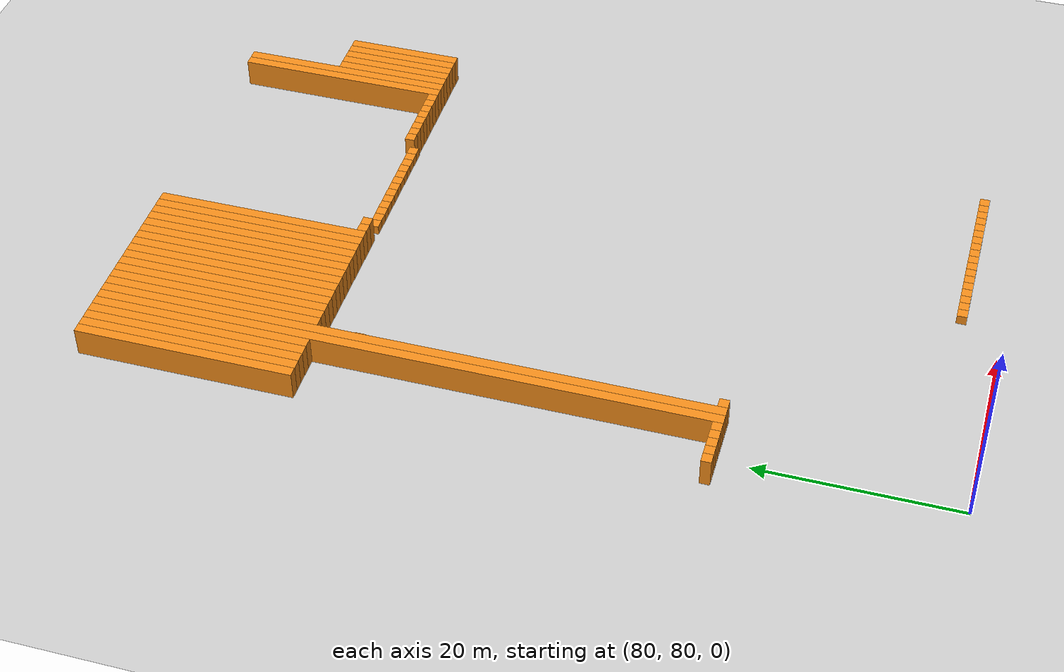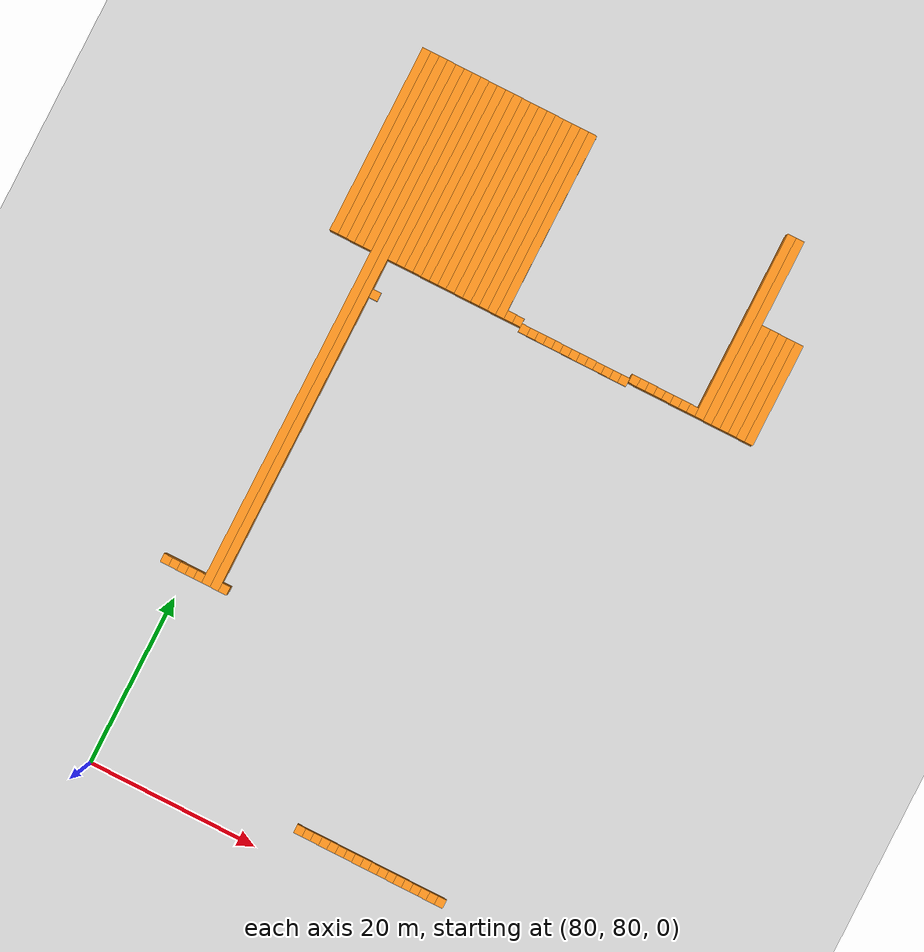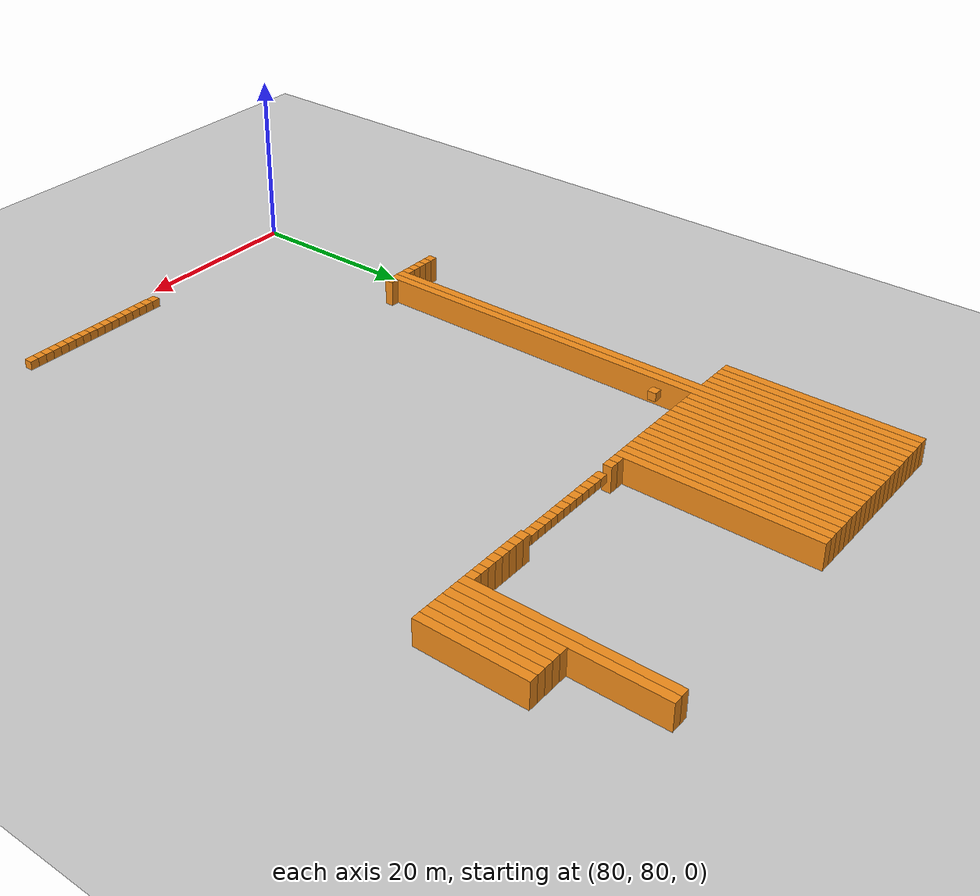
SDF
<sdf version="1.6">
 <world name="default">
  <include><uri>model://ground_plane</uri></include>
  <model name="unit_box_861">
   <pose>77.50   103.50     1.50 0 0 0</pose>
   <static>1</static>
   <link name="link">
    <inertial>
     <mass>5000</mass>
     <inertia><ixx>200</ixx><ixy>0</ixy><ixz>0</ixz><iyy>200</iyy><iyz>0</iyz><izz>200</izz></inertia>
    </inertial>
    <collision name="collision"><geometry><box><size>1 1 3</size></box></geometry></collision>
    <visual name="visual">
     <geometry><box><size>1 1 3</size></box></geometry>
     <material>
      <script><name>Gazebo/Orange</name><uri>file://media/materials/scripts/gazebo.material</uri></script>
     </material>
    </visual>
   </link>
  </model>
  <model name="unit_box_862">
   <pose>77.50   154.00     1.50 0 0 0</pose>
   <static>1</static>
   <link name="link">
    <inertial>
     <mass>5000</mass>
     <inertia><ixx>200</ixx><ixy>0</ixy><ixz>0</ixz><iyy>200</iyy><iyz>0</iyz><izz>200</izz></inertia>
    </inertial>
    <collision name="collision"><geometry><box><size>1 22 3</size></box></geometry></collision>
    <visual name="visual">
     <geometry><box><size>1 22 3</size></box></geometry>
     <material>
      <script><name>Gazebo/Orange</name><uri>file://media/materials/scripts/gazebo.material</uri></script>
     </material>
    </visual>
   </link>
  </model>
  <model name="unit_box_874">
   <pose>78.50   103.50     1.50 0 0 0</pose>
   <static>1</static>
   <link name="link">
    <inertial>
     <mass>5000</mass>
     <inertia><ixx>200</ixx><ixy>0</ixy><ixz>0</ixz><iyy>200</iyy><iyz>0</iyz><izz>200</izz></inertia>
    </inertial>
    <collision name="collision"><geometry><box><size>1 1 3</size></box></geometry></collision>
    <visual name="visual">
     <geometry><box><size>1 1 3</size></box></geometry>
     <material>
      <script><name>Gazebo/Orange</name><uri>file://media/materials/scripts/gazebo.material</uri></script>
     </material>
    </visual>
   </link>
  </model>
  <model name="unit_box_875">
   <pose>78.50   154.00     1.50 0 0 0</pose>
   <static>1</static>
   <link name="link">
    <inertial>
     <mass>5000</mass>
     <inertia><ixx>200</ixx><ixy>0</ixy><ixz>0</ixz><iyy>200</iyy><iyz>0</iyz><izz>200</izz></inertia>
    </inertial>
    <collision name="collision"><geometry><box><size>1 22 3</size></box></geometry></collision>
    <visual name="visual">
     <geometry><box><size>1 22 3</size></box></geometry>
     <material>
      <script><name>Gazebo/Orange</name><uri>file://media/materials/scripts/gazebo.material</uri></script>
     </material>
    </visual>
   </link>
  </model>
  <model name="unit_box_887">
   <pose>79.50   103.50     1.50 0 0 0</pose>
   <static>1</static>
   <link name="link">
    <inertial>
     <mass>5000</mass>
     <inertia><ixx>200</ixx><ixy>0</ixy><ixz>0</ixz><iyy>200</iyy><iyz>0</iyz><izz>200</izz></inertia>
    </inertial>
    <collision name="collision"><geometry><box><size>1 1 3</size></box></geometry></collision>
    <visual name="visual">
     <geometry><box><size>1 1 3</size></box></geometry>
     <material>
      <script><name>Gazebo/Orange</name><uri>file://media/materials/scripts/gazebo.material</uri></script>
     </material>
    </visual>
   </link>
  </model>
  <model name="unit_box_888">
   <pose>79.50   154.00     1.50 0 0 0</pose>
   <static>1</static>
   <link name="link">
    <inertial>
     <mass>5000</mass>
     <inertia><ixx>200</ixx><ixy>0</ixy><ixz>0</ixz><iyy>200</iyy><iyz>0</iyz><izz>200</izz></inertia>
    </inertial>
    <collision name="collision"><geometry><box><size>1 22 3</size></box></geometry></collision>
    <visual name="visual">
     <geometry><box><size>1 22 3</size></box></geometry>
     <material>
      <script><name>Gazebo/Orange</name><uri>file://media/materials/scripts/gazebo.material</uri></script>
     </material>
    </visual>
   </link>
  </model>
  <model name="unit_box_900">
   <pose>80.50   103.50     1.50 0 0 0</pose>
   <static>1</static>
   <link name="link">
    <inertial>
     <mass>5000</mass>
     <inertia><ixx>200</ixx><ixy>0</ixy><ixz>0</ixz><iyy>200</iyy><iyz>0</iyz><izz>200</izz></inertia>
    </inertial>
    <collision name="collision"><geometry><box><size>1 1 3</size></box></geometry></collision>
    <visual name="visual">
     <geometry><box><size>1 1 3</size></box></geometry>
     <material>
      <script><name>Gazebo/Orange</name><uri>file://media/materials/scripts/gazebo.material</uri></script>
     </material>
    </visual>
   </link>
  </model>
  <model name="unit_box_901">
   <pose>80.50   154.00     1.50 0 0 0</pose>
   <static>1</static>
   <link name="link">
    <inertial>
     <mass>5000</mass>
     <inertia><ixx>200</ixx><ixy>0</ixy><ixz>0</ixz><iyy>200</iyy><iyz>0</iyz><izz>200</izz></inertia>
    </inertial>
    <collision name="collision"><geometry><box><size>1 22 3</size></box></geometry></collision>
    <visual name="visual">
     <geometry><box><size>1 22 3</size></box></geometry>
     <material>
      <script><name>Gazebo/Orange</name><uri>file://media/materials/scripts/gazebo.material</uri></script>
     </material>
    </visual>
   </link>
  </model>
  <model name="unit_box_913">
   <pose>81.50   103.50     1.50 0 0 0</pose>
   <static>1</static>
   <link name="link">
    <inertial>
     <mass>5000</mass>
     <inertia><ixx>200</ixx><ixy>0</ixy><ixz>0</ixz><iyy>200</iyy><iyz>0</iyz><izz>200</izz></inertia>
    </inertial>
    <collision name="collision"><geometry><box><size>1 1 3</size></box></geometry></collision>
    <visual name="visual">
     <geometry><box><size>1 1 3</size></box></geometry>
     <material>
      <script><name>Gazebo/Orange</name><uri>file://media/materials/scripts/gazebo.material</uri></script>
     </material>
    </visual>
   </link>
  </model>
  <model name="unit_box_914">
   <pose>81.50   154.00     1.50 0 0 0</pose>
   <static>1</static>
   <link name="link">
    <inertial>
     <mass>5000</mass>
     <inertia><ixx>200</ixx><ixy>0</ixy><ixz>0</ixz><iyy>200</iyy><iyz>0</iyz><izz>200</izz></inertia>
    </inertial>
    <collision name="collision"><geometry><box><size>1 22 3</size></box></geometry></collision>
    <visual name="visual">
     <geometry><box><size>1 22 3</size></box></geometry>
     <material>
      <script><name>Gazebo/Orange</name><uri>file://media/materials/scripts/gazebo.material</uri></script>
     </material>
    </visual>
   </link>
  </model>
  <model name="unit_box_927">
   <pose>82.50   134.00     1.50 0 0 0</pose>
   <static>1</static>
   <link name="link">
    <inertial>
     <mass>5000</mass>
     <inertia><ixx>200</ixx><ixy>0</ixy><ixz>0</ixz><iyy>200</iyy><iyz>0</iyz><izz>200</izz></inertia>
    </inertial>
    <collision name="collision"><geometry><box><size>1 62 3</size></box></geometry></collision>
    <visual name="visual">
     <geometry><box><size>1 62 3</size></box></geometry>
     <material>
      <script><name>Gazebo/Orange</name><uri>file://media/materials/scripts/gazebo.material</uri></script>
     </material>
    </visual>
   </link>
  </model>
  <model name="unit_box_941">
   <pose>83.50   134.00     1.50 0 0 0</pose>
   <static>1</static>
   <link name="link">
    <inertial>
     <mass>5000</mass>
     <inertia><ixx>200</ixx><ixy>0</ixy><ixz>0</ixz><iyy>200</iyy><iyz>0</iyz><izz>200</izz></inertia>
    </inertial>
    <collision name="collision"><geometry><box><size>1 62 3</size></box></geometry></collision>
    <visual name="visual">
     <geometry><box><size>1 62 3</size></box></geometry>
     <material>
      <script><name>Gazebo/Orange</name><uri>file://media/materials/scripts/gazebo.material</uri></script>
     </material>
    </visual>
   </link>
  </model>
  <model name="unit_box_953">
   <pose>84.50   103.50     1.50 0 0 0</pose>
   <static>1</static>
   <link name="link">
    <inertial>
     <mass>5000</mass>
     <inertia><ixx>200</ixx><ixy>0</ixy><ixz>0</ixz><iyy>200</iyy><iyz>0</iyz><izz>200</izz></inertia>
    </inertial>
    <collision name="collision"><geometry><box><size>1 1 3</size></box></geometry></collision>
    <visual name="visual">
     <geometry><box><size>1 1 3</size></box></geometry>
     <material>
      <script><name>Gazebo/Orange</name><uri>file://media/materials/scripts/gazebo.material</uri></script>
     </material>
    </visual>
   </link>
  </model>
  <model name="unit_box_954">
   <pose>84.50   139.00     1.50 0 0 0</pose>
   <static>1</static>
   <link name="link">
    <inertial>
     <mass>5000</mass>
     <inertia><ixx>200</ixx><ixy>0</ixy><ixz>0</ixz><iyy>200</iyy><iyz>0</iyz><izz>200</izz></inertia>
    </inertial>
    <collision name="collision"><geometry><box><size>1 1 1</size></box></geometry></collision>
    <visual name="visual">
     <geometry><box><size>1 1 1</size></box></geometry>
     <material>
      <script><name>Gazebo/Orange</name><uri>file://media/materials/scripts/gazebo.material</uri></script>
     </material>
    </visual>
   </link>
  </model>
  <model name="unit_box_955">
   <pose>84.50   154.00     1.50 0 0 0</pose>
   <static>1</static>
   <link name="link">
    <inertial>
     <mass>5000</mass>
     <inertia><ixx>200</ixx><ixy>0</ixy><ixz>0</ixz><iyy>200</iyy><iyz>0</iyz><izz>200</izz></inertia>
    </inertial>
    <collision name="collision"><geometry><box><size>1 22 3</size></box></geometry></collision>
    <visual name="visual">
     <geometry><box><size>1 22 3</size></box></geometry>
     <material>
      <script><name>Gazebo/Orange</name><uri>file://media/materials/scripts/gazebo.material</uri></script>
     </material>
    </visual>
   </link>
  </model>
  <model name="unit_box_967">
   <pose>85.50   154.00     1.50 0 0 0</pose>
   <static>1</static>
   <link name="link">
    <inertial>
     <mass>5000</mass>
     <inertia><ixx>200</ixx><ixy>0</ixy><ixz>0</ixz><iyy>200</iyy><iyz>0</iyz><izz>200</izz></inertia>
    </inertial>
    <collision name="collision"><geometry><box><size>1 22 3</size></box></geometry></collision>
    <visual name="visual">
     <geometry><box><size>1 22 3</size></box></geometry>
     <material>
      <script><name>Gazebo/Orange</name><uri>file://media/materials/scripts/gazebo.material</uri></script>
     </material>
    </visual>
   </link>
  </model>
  <model name="unit_box_978">
   <pose>86.50   154.00     1.50 0 0 0</pose>
   <static>1</static>
   <link name="link">
    <inertial>
     <mass>5000</mass>
     <inertia><ixx>200</ixx><ixy>0</ixy><ixz>0</ixz><iyy>200</iyy><iyz>0</iyz><izz>200</izz></inertia>
    </inertial>
    <collision name="collision"><geometry><box><size>1 22 3</size></box></geometry></collision>
    <visual name="visual">
     <geometry><box><size>1 22 3</size></box></geometry>
     <material>
      <script><name>Gazebo/Orange</name><uri>file://media/materials/scripts/gazebo.material</uri></script>
     </material>
    </visual>
   </link>
  </model>
  <model name="unit_box_993">
   <pose>87.50   154.00     1.50 0 0 0</pose>
   <static>1</static>
   <link name="link">
    <inertial>
     <mass>5000</mass>
     <inertia><ixx>200</ixx><ixy>0</ixy><ixz>0</ixz><iyy>200</iyy><iyz>0</iyz><izz>200</izz></inertia>
    </inertial>
    <collision name="collision"><geometry><box><size>1 22 3</size></box></geometry></collision>
    <visual name="visual">
     <geometry><box><size>1 22 3</size></box></geometry>
     <material>
      <script><name>Gazebo/Orange</name><uri>file://media/materials/scripts/gazebo.material</uri></script>
     </material>
    </visual>
   </link>
  </model>
  <model name="unit_box_1003">
   <pose>88.50   154.00     1.50 0 0 0</pose>
   <static>1</static>
   <link name="link">
    <inertial>
     <mass>5000</mass>
     <inertia><ixx>200</ixx><ixy>0</ixy><ixz>0</ixz><iyy>200</iyy><iyz>0</iyz><izz>200</izz></inertia>
    </inertial>
    <collision name="collision"><geometry><box><size>1 22 3</size></box></geometry></collision>
    <visual name="visual">
     <geometry><box><size>1 22 3</size></box></geometry>
     <material>
      <script><name>Gazebo/Orange</name><uri>file://media/materials/scripts/gazebo.material</uri></script>
     </material>
    </visual>
   </link>
  </model>
  <model name="unit_box_1014">
   <pose>89.50   154.00     1.50 0 0 0</pose>
   <static>1</static>
   <link name="link">
    <inertial>
     <mass>5000</mass>
     <inertia><ixx>200</ixx><ixy>0</ixy><ixz>0</ixz><iyy>200</iyy><iyz>0</iyz><izz>200</izz></inertia>
    </inertial>
    <collision name="collision"><geometry><box><size>1 22 3</size></box></geometry></collision>
    <visual name="visual">
     <geometry><box><size>1 22 3</size></box></geometry>
     <material>
      <script><name>Gazebo/Orange</name><uri>file://media/materials/scripts/gazebo.material</uri></script>
     </material>
    </visual>
   </link>
  </model>
  <model name="unit_box_1023">
   <pose>90.50   154.00     1.50 0 0 0</pose>
   <static>1</static>
   <link name="link">
    <inertial>
     <mass>5000</mass>
     <inertia><ixx>200</ixx><ixy>0</ixy><ixz>0</ixz><iyy>200</iyy><iyz>0</iyz><izz>200</izz></inertia>
    </inertial>
    <collision name="collision"><geometry><box><size>1 22 3</size></box></geometry></collision>
    <visual name="visual">
     <geometry><box><size>1 22 3</size></box></geometry>
     <material>
      <script><name>Gazebo/Orange</name><uri>file://media/materials/scripts/gazebo.material</uri></script>
     </material>
    </visual>
   </link>
  </model>
  <model name="unit_box_1032">
   <pose>91.50   154.00     1.50 0 0 0</pose>
   <static>1</static>
   <link name="link">
    <inertial>
     <mass>5000</mass>
     <inertia><ixx>200</ixx><ixy>0</ixy><ixz>0</ixz><iyy>200</iyy><iyz>0</iyz><izz>200</izz></inertia>
    </inertial>
    <collision name="collision"><geometry><box><size>1 22 3</size></box></geometry></collision>
    <visual name="visual">
     <geometry><box><size>1 22 3</size></box></geometry>
     <material>
      <script><name>Gazebo/Orange</name><uri>file://media/materials/scripts/gazebo.material</uri></script>
     </material>
    </visual>
   </link>
  </model>
  <model name="unit_box_1041">
   <pose>92.50   154.00     1.50 0 0 0</pose>
   <static>1</static>
   <link name="link">
    <inertial>
     <mass>5000</mass>
     <inertia><ixx>200</ixx><ixy>0</ixy><ixz>0</ixz><iyy>200</iyy><iyz>0</iyz><izz>200</izz></inertia>
    </inertial>
    <collision name="collision"><geometry><box><size>1 22 3</size></box></geometry></collision>
    <visual name="visual">
     <geometry><box><size>1 22 3</size></box></geometry>
     <material>
      <script><name>Gazebo/Orange</name><uri>file://media/materials/scripts/gazebo.material</uri></script>
     </material>
    </visual>
   </link>
  </model>
  <model name="unit_box_1050">
   <pose>93.50   154.00     1.50 0 0 0</pose>
   <static>1</static>
   <link name="link">
    <inertial>
     <mass>5000</mass>
     <inertia><ixx>200</ixx><ixy>0</ixy><ixz>0</ixz><iyy>200</iyy><iyz>0</iyz><izz>200</izz></inertia>
    </inertial>
    <collision name="collision"><geometry><box><size>1 22 3</size></box></geometry></collision>
    <visual name="visual">
     <geometry><box><size>1 22 3</size></box></geometry>
     <material>
      <script><name>Gazebo/Orange</name><uri>file://media/materials/scripts/gazebo.material</uri></script>
     </material>
    </visual>
   </link>
  </model>
  <model name="unit_box_1058">
   <pose>94.50   154.00     1.50 0 0 0</pose>
   <static>1</static>
   <link name="link">
    <inertial>
     <mass>5000</mass>
     <inertia><ixx>200</ixx><ixy>0</ixy><ixz>0</ixz><iyy>200</iyy><iyz>0</iyz><izz>200</izz></inertia>
    </inertial>
    <collision name="collision"><geometry><box><size>1 22 3</size></box></geometry></collision>
    <visual name="visual">
     <geometry><box><size>1 22 3</size></box></geometry>
     <material>
      <script><name>Gazebo/Orange</name><uri>file://media/materials/scripts/gazebo.material</uri></script>
     </material>
    </visual>
   </link>
  </model>
  <model name="unit_box_1069">
   <pose>95.50   154.00     1.50 0 0 0</pose>
   <static>1</static>
   <link name="link">
    <inertial>
     <mass>5000</mass>
     <inertia><ixx>200</ixx><ixy>0</ixy><ixz>0</ixz><iyy>200</iyy><iyz>0</iyz><izz>200</izz></inertia>
    </inertial>
    <collision name="collision"><geometry><box><size>1 22 3</size></box></geometry></collision>
    <visual name="visual">
     <geometry><box><size>1 22 3</size></box></geometry>
     <material>
      <script><name>Gazebo/Orange</name><uri>file://media/materials/scripts/gazebo.material</uri></script>
     </material>
    </visual>
   </link>
  </model>
  <model name="unit_box_1081">
   <pose>96.50   154.00     1.50 0 0 0</pose>
   <static>1</static>
   <link name="link">
    <inertial>
     <mass>5000</mass>
     <inertia><ixx>200</ixx><ixy>0</ixy><ixz>0</ixz><iyy>200</iyy><iyz>0</iyz><izz>200</izz></inertia>
    </inertial>
    <collision name="collision"><geometry><box><size>1 22 3</size></box></geometry></collision>
    <visual name="visual">
     <geometry><box><size>1 22 3</size></box></geometry>
     <material>
      <script><name>Gazebo/Orange</name><uri>file://media/materials/scripts/gazebo.material</uri></script>
     </material>
    </visual>
   </link>
  </model>
  <model name="unit_box_1090">
   <pose>97.50   154.00     1.50 0 0 0</pose>
   <static>1</static>
   <link name="link">
    <inertial>
     <mass>5000</mass>
     <inertia><ixx>200</ixx><ixy>0</ixy><ixz>0</ixz><iyy>200</iyy><iyz>0</iyz><izz>200</izz></inertia>
    </inertial>
    <collision name="collision"><geometry><box><size>1 22 3</size></box></geometry></collision>
    <visual name="visual">
     <geometry><box><size>1 22 3</size></box></geometry>
     <material>
      <script><name>Gazebo/Orange</name><uri>file://media/materials/scripts/gazebo.material</uri></script>
     </material>
    </visual>
   </link>
  </model>
  <model name="unit_box_1100">
   <pose>98.50   143.50     1.50 0 0 0</pose>
   <static>1</static>
   <link name="link">
    <inertial>
     <mass>5000</mass>
     <inertia><ixx>200</ixx><ixy>0</ixy><ixz>0</ixz><iyy>200</iyy><iyz>0</iyz><izz>200</izz></inertia>
    </inertial>
    <collision name="collision"><geometry><box><size>1 1 3</size></box></geometry></collision>
    <visual name="visual">
     <geometry><box><size>1 1 3</size></box></geometry>
     <material>
      <script><name>Gazebo/Orange</name><uri>file://media/materials/scripts/gazebo.material</uri></script>
     </material>
    </visual>
   </link>
  </model>
  <model name="unit_box_1112">
   <pose>99.50   143.50     1.50 0 0 0</pose>
   <static>1</static>
   <link name="link">
    <inertial>
     <mass>5000</mass>
     <inertia><ixx>200</ixx><ixy>0</ixy><ixz>0</ixz><iyy>200</iyy><iyz>0</iyz><izz>200</izz></inertia>
    </inertial>
    <collision name="collision"><geometry><box><size>1 1 3</size></box></geometry></collision>
    <visual name="visual">
     <geometry><box><size>1 1 3</size></box></geometry>
     <material>
      <script><name>Gazebo/Orange</name><uri>file://media/materials/scripts/gazebo.material</uri></script>
     </material>
    </visual>
   </link>
  </model>
  <model name="unit_box_1124">
   <pose>100.50   143.00     1.50 0 0 0</pose>
   <static>1</static>
   <link name="link">
    <inertial>
     <mass>5000</mass>
     <inertia><ixx>200</ixx><ixy>0</ixy><ixz>0</ixz><iyy>200</iyy><iyz>0</iyz><izz>200</izz></inertia>
    </inertial>
    <collision name="collision"><geometry><box><size>1 1 1</size></box></geometry></collision>
    <visual name="visual">
     <geometry><box><size>1 1 1</size></box></geometry>
     <material>
      <script><name>Gazebo/Orange</name><uri>file://media/materials/scripts/gazebo.material</uri></script>
     </material>
    </visual>
   </link>
  </model>
  <model name="unit_box_1136">
   <pose>101.50   143.00     1.50 0 0 0</pose>
   <static>1</static>
   <link name="link">
    <inertial>
     <mass>5000</mass>
     <inertia><ixx>200</ixx><ixy>0</ixy><ixz>0</ixz><iyy>200</iyy><iyz>0</iyz><izz>200</izz></inertia>
    </inertial>
    <collision name="collision"><geometry><box><size>1 1 1</size></box></geometry></collision>
    <visual name="visual">
     <geometry><box><size>1 1 1</size></box></geometry>
     <material>
      <script><name>Gazebo/Orange</name><uri>file://media/materials/scripts/gazebo.material</uri></script>
     </material>
    </visual>
   </link>
  </model>
  <model name="unit_box_1147">
   <pose>102.50   143.00     1.50 0 0 0</pose>
   <static>1</static>
   <link name="link">
    <inertial>
     <mass>5000</mass>
     <inertia><ixx>200</ixx><ixy>0</ixy><ixz>0</ixz><iyy>200</iyy><iyz>0</iyz><izz>200</izz></inertia>
    </inertial>
    <collision name="collision"><geometry><box><size>1 1 1</size></box></geometry></collision>
    <visual name="visual">
     <geometry><box><size>1 1 1</size></box></geometry>
     <material>
      <script><name>Gazebo/Orange</name><uri>file://media/materials/scripts/gazebo.material</uri></script>
     </material>
    </visual>
   </link>
  </model>
  <model name="unit_box_1156">
   <pose>103.50    84.00     1.50 0 0 0</pose>
   <static>1</static>
   <link name="link">
    <inertial>
     <mass>5000</mass>
     <inertia><ixx>200</ixx><ixy>0</ixy><ixz>0</ixz><iyy>200</iyy><iyz>0</iyz><izz>200</izz></inertia>
    </inertial>
    <collision name="collision"><geometry><box><size>1 1 1</size></box></geometry></collision>
    <visual name="visual">
     <geometry><box><size>1 1 1</size></box></geometry>
     <material>
      <script><name>Gazebo/Orange</name><uri>file://media/materials/scripts/gazebo.material</uri></script>
     </material>
    </visual>
   </link>
  </model>
  <model name="unit_box_1157">
   <pose>103.50   143.00     1.50 0 0 0</pose>
   <static>1</static>
   <link name="link">
    <inertial>
     <mass>5000</mass>
     <inertia><ixx>200</ixx><ixy>0</ixy><ixz>0</ixz><iyy>200</iyy><iyz>0</iyz><izz>200</izz></inertia>
    </inertial>
    <collision name="collision"><geometry><box><size>1 1 1</size></box></geometry></collision>
    <visual name="visual">
     <geometry><box><size>1 1 1</size></box></geometry>
     <material>
      <script><name>Gazebo/Orange</name><uri>file://media/materials/scripts/gazebo.material</uri></script>
     </material>
    </visual>
   </link>
  </model>
  <model name="unit_box_1166">
   <pose>104.50    84.00     1.50 0 0 0</pose>
   <static>1</static>
   <link name="link">
    <inertial>
     <mass>5000</mass>
     <inertia><ixx>200</ixx><ixy>0</ixy><ixz>0</ixz><iyy>200</iyy><iyz>0</iyz><izz>200</izz></inertia>
    </inertial>
    <collision name="collision"><geometry><box><size>1 1 1</size></box></geometry></collision>
    <visual name="visual">
     <geometry><box><size>1 1 1</size></box></geometry>
     <material>
      <script><name>Gazebo/Orange</name><uri>file://media/materials/scripts/gazebo.material</uri></script>
     </material>
    </visual>
   </link>
  </model>
  <model name="unit_box_1167">
   <pose>104.50   143.00     1.50 0 0 0</pose>
   <static>1</static>
   <link name="link">
    <inertial>
     <mass>5000</mass>
     <inertia><ixx>200</ixx><ixy>0</ixy><ixz>0</ixz><iyy>200</iyy><iyz>0</iyz><izz>200</izz></inertia>
    </inertial>
    <collision name="collision"><geometry><box><size>1 1 1</size></box></geometry></collision>
    <visual name="visual">
     <geometry><box><size>1 1 1</size></box></geometry>
     <material>
      <script><name>Gazebo/Orange</name><uri>file://media/materials/scripts/gazebo.material</uri></script>
     </material>
    </visual>
   </link>
  </model>
  <model name="unit_box_1176">
   <pose>105.50    84.00     1.50 0 0 0</pose>
   <static>1</static>
   <link name="link">
    <inertial>
     <mass>5000</mass>
     <inertia><ixx>200</ixx><ixy>0</ixy><ixz>0</ixz><iyy>200</iyy><iyz>0</iyz><izz>200</izz></inertia>
    </inertial>
    <collision name="collision"><geometry><box><size>1 1 1</size></box></geometry></collision>
    <visual name="visual">
     <geometry><box><size>1 1 1</size></box></geometry>
     <material>
      <script><name>Gazebo/Orange</name><uri>file://media/materials/scripts/gazebo.material</uri></script>
     </material>
    </visual>
   </link>
  </model>
  <model name="unit_box_1177">
   <pose>105.50   143.00     1.50 0 0 0</pose>
   <static>1</static>
   <link name="link">
    <inertial>
     <mass>5000</mass>
     <inertia><ixx>200</ixx><ixy>0</ixy><ixz>0</ixz><iyy>200</iyy><iyz>0</iyz><izz>200</izz></inertia>
    </inertial>
    <collision name="collision"><geometry><box><size>1 1 1</size></box></geometry></collision>
    <visual name="visual">
     <geometry><box><size>1 1 1</size></box></geometry>
     <material>
      <script><name>Gazebo/Orange</name><uri>file://media/materials/scripts/gazebo.material</uri></script>
     </material>
    </visual>
   </link>
  </model>
  <model name="unit_box_1186">
   <pose>106.50    84.00     1.50 0 0 0</pose>
   <static>1</static>
   <link name="link">
    <inertial>
     <mass>5000</mass>
     <inertia><ixx>200</ixx><ixy>0</ixy><ixz>0</ixz><iyy>200</iyy><iyz>0</iyz><izz>200</izz></inertia>
    </inertial>
    <collision name="collision"><geometry><box><size>1 1 1</size></box></geometry></collision>
    <visual name="visual">
     <geometry><box><size>1 1 1</size></box></geometry>
     <material>
      <script><name>Gazebo/Orange</name><uri>file://media/materials/scripts/gazebo.material</uri></script>
     </material>
    </visual>
   </link>
  </model>
  <model name="unit_box_1187">
   <pose>106.50   143.00     1.50 0 0 0</pose>
   <static>1</static>
   <link name="link">
    <inertial>
     <mass>5000</mass>
     <inertia><ixx>200</ixx><ixy>0</ixy><ixz>0</ixz><iyy>200</iyy><iyz>0</iyz><izz>200</izz></inertia>
    </inertial>
    <collision name="collision"><geometry><box><size>1 1 1</size></box></geometry></collision>
    <visual name="visual">
     <geometry><box><size>1 1 1</size></box></geometry>
     <material>
      <script><name>Gazebo/Orange</name><uri>file://media/materials/scripts/gazebo.material</uri></script>
     </material>
    </visual>
   </link>
  </model>
  <model name="unit_box_1195">
   <pose>107.50    84.00     1.50 0 0 0</pose>
   <static>1</static>
   <link name="link">
    <inertial>
     <mass>5000</mass>
     <inertia><ixx>200</ixx><ixy>0</ixy><ixz>0</ixz><iyy>200</iyy><iyz>0</iyz><izz>200</izz></inertia>
    </inertial>
    <collision name="collision"><geometry><box><size>1 1 1</size></box></geometry></collision>
    <visual name="visual">
     <geometry><box><size>1 1 1</size></box></geometry>
     <material>
      <script><name>Gazebo/Orange</name><uri>file://media/materials/scripts/gazebo.material</uri></script>
     </material>
    </visual>
   </link>
  </model>
  <model name="unit_box_1196">
   <pose>107.50   143.00     1.50 0 0 0</pose>
   <static>1</static>
   <link name="link">
    <inertial>
     <mass>5000</mass>
     <inertia><ixx>200</ixx><ixy>0</ixy><ixz>0</ixz><iyy>200</iyy><iyz>0</iyz><izz>200</izz></inertia>
    </inertial>
    <collision name="collision"><geometry><box><size>1 1 1</size></box></geometry></collision>
    <visual name="visual">
     <geometry><box><size>1 1 1</size></box></geometry>
     <material>
      <script><name>Gazebo/Orange</name><uri>file://media/materials/scripts/gazebo.material</uri></script>
     </material>
    </visual>
   </link>
  </model>
  <model name="unit_box_1204">
   <pose>108.50    84.00     1.50 0 0 0</pose>
   <static>1</static>
   <link name="link">
    <inertial>
     <mass>5000</mass>
     <inertia><ixx>200</ixx><ixy>0</ixy><ixz>0</ixz><iyy>200</iyy><iyz>0</iyz><izz>200</izz></inertia>
    </inertial>
    <collision name="collision"><geometry><box><size>1 1 1</size></box></geometry></collision>
    <visual name="visual">
     <geometry><box><size>1 1 1</size></box></geometry>
     <material>
      <script><name>Gazebo/Orange</name><uri>file://media/materials/scripts/gazebo.material</uri></script>
     </material>
    </visual>
   </link>
  </model>
  <model name="unit_box_1205">
   <pose>108.50   143.00     1.50 0 0 0</pose>
   <static>1</static>
   <link name="link">
    <inertial>
     <mass>5000</mass>
     <inertia><ixx>200</ixx><ixy>0</ixy><ixz>0</ixz><iyy>200</iyy><iyz>0</iyz><izz>200</izz></inertia>
    </inertial>
    <collision name="collision"><geometry><box><size>1 1 1</size></box></geometry></collision>
    <visual name="visual">
     <geometry><box><size>1 1 1</size></box></geometry>
     <material>
      <script><name>Gazebo/Orange</name><uri>file://media/materials/scripts/gazebo.material</uri></script>
     </material>
    </visual>
   </link>
  </model>
  <model name="unit_box_1213">
   <pose>109.50    84.00     1.50 0 0 0</pose>
   <static>1</static>
   <link name="link">
    <inertial>
     <mass>5000</mass>
     <inertia><ixx>200</ixx><ixy>0</ixy><ixz>0</ixz><iyy>200</iyy><iyz>0</iyz><izz>200</izz></inertia>
    </inertial>
    <collision name="collision"><geometry><box><size>1 1 1</size></box></geometry></collision>
    <visual name="visual">
     <geometry><box><size>1 1 1</size></box></geometry>
     <material>
      <script><name>Gazebo/Orange</name><uri>file://media/materials/scripts/gazebo.material</uri></script>
     </material>
    </visual>
   </link>
  </model>
  <model name="unit_box_1214">
   <pose>109.50   143.00     1.50 0 0 0</pose>
   <static>1</static>
   <link name="link">
    <inertial>
     <mass>5000</mass>
     <inertia><ixx>200</ixx><ixy>0</ixy><ixz>0</ixz><iyy>200</iyy><iyz>0</iyz><izz>200</izz></inertia>
    </inertial>
    <collision name="collision"><geometry><box><size>1 1 1</size></box></geometry></collision>
    <visual name="visual">
     <geometry><box><size>1 1 1</size></box></geometry>
     <material>
      <script><name>Gazebo/Orange</name><uri>file://media/materials/scripts/gazebo.material</uri></script>
     </material>
    </visual>
   </link>
  </model>
  <model name="unit_box_1222">
   <pose>110.50    84.00     1.50 0 0 0</pose>
   <static>1</static>
   <link name="link">
    <inertial>
     <mass>5000</mass>
     <inertia><ixx>200</ixx><ixy>0</ixy><ixz>0</ixz><iyy>200</iyy><iyz>0</iyz><izz>200</izz></inertia>
    </inertial>
    <collision name="collision"><geometry><box><size>1 1 1</size></box></geometry></collision>
    <visual name="visual">
     <geometry><box><size>1 1 1</size></box></geometry>
     <material>
      <script><name>Gazebo/Orange</name><uri>file://media/materials/scripts/gazebo.material</uri></script>
     </material>
    </visual>
   </link>
  </model>
  <model name="unit_box_1223">
   <pose>110.50   143.00     1.50 0 0 0</pose>
   <static>1</static>
   <link name="link">
    <inertial>
     <mass>5000</mass>
     <inertia><ixx>200</ixx><ixy>0</ixy><ixz>0</ixz><iyy>200</iyy><iyz>0</iyz><izz>200</izz></inertia>
    </inertial>
    <collision name="collision"><geometry><box><size>1 1 1</size></box></geometry></collision>
    <visual name="visual">
     <geometry><box><size>1 1 1</size></box></geometry>
     <material>
      <script><name>Gazebo/Orange</name><uri>file://media/materials/scripts/gazebo.material</uri></script>
     </material>
    </visual>
   </link>
  </model>
  <model name="unit_box_1231">
   <pose>111.50    84.00     1.50 0 0 0</pose>
   <static>1</static>
   <link name="link">
    <inertial>
     <mass>5000</mass>
     <inertia><ixx>200</ixx><ixy>0</ixy><ixz>0</ixz><iyy>200</iyy><iyz>0</iyz><izz>200</izz></inertia>
    </inertial>
    <collision name="collision"><geometry><box><size>1 1 1</size></box></geometry></collision>
    <visual name="visual">
     <geometry><box><size>1 1 1</size></box></geometry>
     <material>
      <script><name>Gazebo/Orange</name><uri>file://media/materials/scripts/gazebo.material</uri></script>
     </material>
    </visual>
   </link>
  </model>
  <model name="unit_box_1232">
   <pose>111.50   143.00     1.50 0 0 0</pose>
   <static>1</static>
   <link name="link">
    <inertial>
     <mass>5000</mass>
     <inertia><ixx>200</ixx><ixy>0</ixy><ixz>0</ixz><iyy>200</iyy><iyz>0</iyz><izz>200</izz></inertia>
    </inertial>
    <collision name="collision"><geometry><box><size>1 1 1</size></box></geometry></collision>
    <visual name="visual">
     <geometry><box><size>1 1 1</size></box></geometry>
     <material>
      <script><name>Gazebo/Orange</name><uri>file://media/materials/scripts/gazebo.material</uri></script>
     </material>
    </visual>
   </link>
  </model>
  <model name="unit_box_1241">
   <pose>112.50    84.00     1.50 0 0 0</pose>
   <static>1</static>
   <link name="link">
    <inertial>
     <mass>5000</mass>
     <inertia><ixx>200</ixx><ixy>0</ixy><ixz>0</ixz><iyy>200</iyy><iyz>0</iyz><izz>200</izz></inertia>
    </inertial>
    <collision name="collision"><geometry><box><size>1 1 1</size></box></geometry></collision>
    <visual name="visual">
     <geometry><box><size>1 1 1</size></box></geometry>
     <material>
      <script><name>Gazebo/Orange</name><uri>file://media/materials/scripts/gazebo.material</uri></script>
     </material>
    </visual>
   </link>
  </model>
  <model name="unit_box_1242">
   <pose>112.50   143.00     1.50 0 0 0</pose>
   <static>1</static>
   <link name="link">
    <inertial>
     <mass>5000</mass>
     <inertia><ixx>200</ixx><ixy>0</ixy><ixz>0</ixz><iyy>200</iyy><iyz>0</iyz><izz>200</izz></inertia>
    </inertial>
    <collision name="collision"><geometry><box><size>1 1 1</size></box></geometry></collision>
    <visual name="visual">
     <geometry><box><size>1 1 1</size></box></geometry>
     <material>
      <script><name>Gazebo/Orange</name><uri>file://media/materials/scripts/gazebo.material</uri></script>
     </material>
    </visual>
   </link>
  </model>
  <model name="unit_box_1250">
   <pose>113.50    84.00     1.50 0 0 0</pose>
   <static>1</static>
   <link name="link">
    <inertial>
     <mass>5000</mass>
     <inertia><ixx>200</ixx><ixy>0</ixy><ixz>0</ixz><iyy>200</iyy><iyz>0</iyz><izz>200</izz></inertia>
    </inertial>
    <collision name="collision"><geometry><box><size>1 1 1</size></box></geometry></collision>
    <visual name="visual">
     <geometry><box><size>1 1 1</size></box></geometry>
     <material>
      <script><name>Gazebo/Orange</name><uri>file://media/materials/scripts/gazebo.material</uri></script>
     </material>
    </visual>
   </link>
  </model>
  <model name="unit_box_1251">
   <pose>113.50   143.50     1.50 0 0 0</pose>
   <static>1</static>
   <link name="link">
    <inertial>
     <mass>5000</mass>
     <inertia><ixx>200</ixx><ixy>0</ixy><ixz>0</ixz><iyy>200</iyy><iyz>0</iyz><izz>200</izz></inertia>
    </inertial>
    <collision name="collision"><geometry><box><size>1 1 3</size></box></geometry></collision>
    <visual name="visual">
     <geometry><box><size>1 1 3</size></box></geometry>
     <material>
      <script><name>Gazebo/Orange</name><uri>file://media/materials/scripts/gazebo.material</uri></script>
     </material>
    </visual>
   </link>
  </model>
  <model name="unit_box_1260">
   <pose>114.50    84.00     1.50 0 0 0</pose>
   <static>1</static>
   <link name="link">
    <inertial>
     <mass>5000</mass>
     <inertia><ixx>200</ixx><ixy>0</ixy><ixz>0</ixz><iyy>200</iyy><iyz>0</iyz><izz>200</izz></inertia>
    </inertial>
    <collision name="collision"><geometry><box><size>1 1 1</size></box></geometry></collision>
    <visual name="visual">
     <geometry><box><size>1 1 1</size></box></geometry>
     <material>
      <script><name>Gazebo/Orange</name><uri>file://media/materials/scripts/gazebo.material</uri></script>
     </material>
    </visual>
   </link>
  </model>
  <model name="unit_box_1261">
   <pose>114.50   143.50     1.50 0 0 0</pose>
   <static>1</static>
   <link name="link">
    <inertial>
     <mass>5000</mass>
     <inertia><ixx>200</ixx><ixy>0</ixy><ixz>0</ixz><iyy>200</iyy><iyz>0</iyz><izz>200</izz></inertia>
    </inertial>
    <collision name="collision"><geometry><box><size>1 1 3</size></box></geometry></collision>
    <visual name="visual">
     <geometry><box><size>1 1 3</size></box></geometry>
     <material>
      <script><name>Gazebo/Orange</name><uri>file://media/materials/scripts/gazebo.material</uri></script>
     </material>
    </visual>
   </link>
  </model>
  <model name="unit_box_1270">
   <pose>115.50    84.00     1.50 0 0 0</pose>
   <static>1</static>
   <link name="link">
    <inertial>
     <mass>5000</mass>
     <inertia><ixx>200</ixx><ixy>0</ixy><ixz>0</ixz><iyy>200</iyy><iyz>0</iyz><izz>200</izz></inertia>
    </inertial>
    <collision name="collision"><geometry><box><size>1 1 1</size></box></geometry></collision>
    <visual name="visual">
     <geometry><box><size>1 1 1</size></box></geometry>
     <material>
      <script><name>Gazebo/Orange</name><uri>file://media/materials/scripts/gazebo.material</uri></script>
     </material>
    </visual>
   </link>
  </model>
  <model name="unit_box_1271">
   <pose>115.50   143.50     1.50 0 0 0</pose>
   <static>1</static>
   <link name="link">
    <inertial>
     <mass>5000</mass>
     <inertia><ixx>200</ixx><ixy>0</ixy><ixz>0</ixz><iyy>200</iyy><iyz>0</iyz><izz>200</izz></inertia>
    </inertial>
    <collision name="collision"><geometry><box><size>1 1 3</size></box></geometry></collision>
    <visual name="visual">
     <geometry><box><size>1 1 3</size></box></geometry>
     <material>
      <script><name>Gazebo/Orange</name><uri>file://media/materials/scripts/gazebo.material</uri></script>
     </material>
    </visual>
   </link>
  </model>
  <model name="unit_box_1284">
   <pose>116.50    84.00     1.50 0 0 0</pose>
   <static>1</static>
   <link name="link">
    <inertial>
     <mass>5000</mass>
     <inertia><ixx>200</ixx><ixy>0</ixy><ixz>0</ixz><iyy>200</iyy><iyz>0</iyz><izz>200</izz></inertia>
    </inertial>
    <collision name="collision"><geometry><box><size>1 1 1</size></box></geometry></collision>
    <visual name="visual">
     <geometry><box><size>1 1 1</size></box></geometry>
     <material>
      <script><name>Gazebo/Orange</name><uri>file://media/materials/scripts/gazebo.material</uri></script>
     </material>
    </visual>
   </link>
  </model>
  <model name="unit_box_1285">
   <pose>116.50   143.50     1.50 0 0 0</pose>
   <static>1</static>
   <link name="link">
    <inertial>
     <mass>5000</mass>
     <inertia><ixx>200</ixx><ixy>0</ixy><ixz>0</ixz><iyy>200</iyy><iyz>0</iyz><izz>200</izz></inertia>
    </inertial>
    <collision name="collision"><geometry><box><size>1 1 3</size></box></geometry></collision>
    <visual name="visual">
     <geometry><box><size>1 1 3</size></box></geometry>
     <material>
      <script><name>Gazebo/Orange</name><uri>file://media/materials/scripts/gazebo.material</uri></script>
     </material>
    </visual>
   </link>
  </model>
  <model name="unit_box_1296">
   <pose>117.50    84.00     1.50 0 0 0</pose>
   <static>1</static>
   <link name="link">
    <inertial>
     <mass>5000</mass>
     <inertia><ixx>200</ixx><ixy>0</ixy><ixz>0</ixz><iyy>200</iyy><iyz>0</iyz><izz>200</izz></inertia>
    </inertial>
    <collision name="collision"><geometry><box><size>1 1 1</size></box></geometry></collision>
    <visual name="visual">
     <geometry><box><size>1 1 1</size></box></geometry>
     <material>
      <script><name>Gazebo/Orange</name><uri>file://media/materials/scripts/gazebo.material</uri></script>
     </material>
    </visual>
   </link>
  </model>
  <model name="unit_box_1297">
   <pose>117.50   143.50     1.50 0 0 0</pose>
   <static>1</static>
   <link name="link">
    <inertial>
     <mass>5000</mass>
     <inertia><ixx>200</ixx><ixy>0</ixy><ixz>0</ixz><iyy>200</iyy><iyz>0</iyz><izz>200</izz></inertia>
    </inertial>
    <collision name="collision"><geometry><box><size>1 1 3</size></box></geometry></collision>
    <visual name="visual">
     <geometry><box><size>1 1 3</size></box></geometry>
     <material>
      <script><name>Gazebo/Orange</name><uri>file://media/materials/scripts/gazebo.material</uri></script>
     </material>
    </visual>
   </link>
  </model>
  <model name="unit_box_1308">
   <pose>118.50    84.00     1.50 0 0 0</pose>
   <static>1</static>
   <link name="link">
    <inertial>
     <mass>5000</mass>
     <inertia><ixx>200</ixx><ixy>0</ixy><ixz>0</ixz><iyy>200</iyy><iyz>0</iyz><izz>200</izz></inertia>
    </inertial>
    <collision name="collision"><geometry><box><size>1 1 1</size></box></geometry></collision>
    <visual name="visual">
     <geometry><box><size>1 1 1</size></box></geometry>
     <material>
      <script><name>Gazebo/Orange</name><uri>file://media/materials/scripts/gazebo.material</uri></script>
     </material>
    </visual>
   </link>
  </model>
  <model name="unit_box_1309">
   <pose>118.50   143.50     1.50 0 0 0</pose>
   <static>1</static>
   <link name="link">
    <inertial>
     <mass>5000</mass>
     <inertia><ixx>200</ixx><ixy>0</ixy><ixz>0</ixz><iyy>200</iyy><iyz>0</iyz><izz>200</izz></inertia>
    </inertial>
    <collision name="collision"><geometry><box><size>1 1 3</size></box></geometry></collision>
    <visual name="visual">
     <geometry><box><size>1 1 3</size></box></geometry>
     <material>
      <script><name>Gazebo/Orange</name><uri>file://media/materials/scripts/gazebo.material</uri></script>
     </material>
    </visual>
   </link>
  </model>
  <model name="unit_box_1319">
   <pose>119.50    84.00     1.50 0 0 0</pose>
   <static>1</static>
   <link name="link">
    <inertial>
     <mass>5000</mass>
     <inertia><ixx>200</ixx><ixy>0</ixy><ixz>0</ixz><iyy>200</iyy><iyz>0</iyz><izz>200</izz></inertia>
    </inertial>
    <collision name="collision"><geometry><box><size>1 1 1</size></box></geometry></collision>
    <visual name="visual">
     <geometry><box><size>1 1 1</size></box></geometry>
     <material>
      <script><name>Gazebo/Orange</name><uri>file://media/materials/scripts/gazebo.material</uri></script>
     </material>
    </visual>
   </link>
  </model>
  <model name="unit_box_1320">
   <pose>119.50   143.50     1.50 0 0 0</pose>
   <static>1</static>
   <link name="link">
    <inertial>
     <mass>5000</mass>
     <inertia><ixx>200</ixx><ixy>0</ixy><ixz>0</ixz><iyy>200</iyy><iyz>0</iyz><izz>200</izz></inertia>
    </inertial>
    <collision name="collision"><geometry><box><size>1 1 3</size></box></geometry></collision>
    <visual name="visual">
     <geometry><box><size>1 1 3</size></box></geometry>
     <material>
      <script><name>Gazebo/Orange</name><uri>file://media/materials/scripts/gazebo.material</uri></script>
     </material>
    </visual>
   </link>
  </model>
  <model name="unit_box_1333">
   <pose>120.50    84.00     1.50 0 0 0</pose>
   <static>1</static>
   <link name="link">
    <inertial>
     <mass>5000</mass>
     <inertia><ixx>200</ixx><ixy>0</ixy><ixz>0</ixz><iyy>200</iyy><iyz>0</iyz><izz>200</izz></inertia>
    </inertial>
    <collision name="collision"><geometry><box><size>1 1 1</size></box></geometry></collision>
    <visual name="visual">
     <geometry><box><size>1 1 1</size></box></geometry>
     <material>
      <script><name>Gazebo/Orange</name><uri>file://media/materials/scripts/gazebo.material</uri></script>
     </material>
    </visual>
   </link>
  </model>
  <model name="unit_box_1334">
   <pose>120.50   143.50     1.50 0 0 0</pose>
   <static>1</static>
   <link name="link">
    <inertial>
     <mass>5000</mass>
     <inertia><ixx>200</ixx><ixy>0</ixy><ixz>0</ixz><iyy>200</iyy><iyz>0</iyz><izz>200</izz></inertia>
    </inertial>
    <collision name="collision"><geometry><box><size>1 1 3</size></box></geometry></collision>
    <visual name="visual">
     <geometry><box><size>1 1 3</size></box></geometry>
     <material>
      <script><name>Gazebo/Orange</name><uri>file://media/materials/scripts/gazebo.material</uri></script>
     </material>
    </visual>
   </link>
  </model>
  <model name="unit_box_1346">
   <pose>121.50   154.00     1.50 0 0 0</pose>
   <static>1</static>
   <link name="link">
    <inertial>
     <mass>5000</mass>
     <inertia><ixx>200</ixx><ixy>0</ixy><ixz>0</ixz><iyy>200</iyy><iyz>0</iyz><izz>200</izz></inertia>
    </inertial>
    <collision name="collision"><geometry><box><size>1 22 3</size></box></geometry></collision>
    <visual name="visual">
     <geometry><box><size>1 22 3</size></box></geometry>
     <material>
      <script><name>Gazebo/Orange</name><uri>file://media/materials/scripts/gazebo.material</uri></script>
     </material>
    </visual>
   </link>
  </model>
  <model name="unit_box_1355">
   <pose>122.50   154.00     1.50 0 0 0</pose>
   <static>1</static>
   <link name="link">
    <inertial>
     <mass>5000</mass>
     <inertia><ixx>200</ixx><ixy>0</ixy><ixz>0</ixz><iyy>200</iyy><iyz>0</iyz><izz>200</izz></inertia>
    </inertial>
    <collision name="collision"><geometry><box><size>1 22 3</size></box></geometry></collision>
    <visual name="visual">
     <geometry><box><size>1 22 3</size></box></geometry>
     <material>
      <script><name>Gazebo/Orange</name><uri>file://media/materials/scripts/gazebo.material</uri></script>
     </material>
    </visual>
   </link>
  </model>
  <model name="unit_box_1361">
   <pose>123.50   149.00     1.50 0 0 0</pose>
   <static>1</static>
   <link name="link">
    <inertial>
     <mass>5000</mass>
     <inertia><ixx>200</ixx><ixy>0</ixy><ixz>0</ixz><iyy>200</iyy><iyz>0</iyz><izz>200</izz></inertia>
    </inertial>
    <collision name="collision"><geometry><box><size>1 12 3</size></box></geometry></collision>
    <visual name="visual">
     <geometry><box><size>1 12 3</size></box></geometry>
     <material>
      <script><name>Gazebo/Orange</name><uri>file://media/materials/scripts/gazebo.material</uri></script>
     </material>
    </visual>
   </link>
  </model>
  <model name="unit_box_1369">
   <pose>124.50   149.00     1.50 0 0 0</pose>
   <static>1</static>
   <link name="link">
    <inertial>
     <mass>5000</mass>
     <inertia><ixx>200</ixx><ixy>0</ixy><ixz>0</ixz><iyy>200</iyy><iyz>0</iyz><izz>200</izz></inertia>
    </inertial>
    <collision name="collision"><geometry><box><size>1 12 3</size></box></geometry></collision>
    <visual name="visual">
     <geometry><box><size>1 12 3</size></box></geometry>
     <material>
      <script><name>Gazebo/Orange</name><uri>file://media/materials/scripts/gazebo.material</uri></script>
     </material>
    </visual>
   </link>
  </model>
  <model name="unit_box_1375">
   <pose>125.50   149.00     1.50 0 0 0</pose>
   <static>1</static>
   <link name="link">
    <inertial>
     <mass>5000</mass>
     <inertia><ixx>200</ixx><ixy>0</ixy><ixz>0</ixz><iyy>200</iyy><iyz>0</iyz><izz>200</izz></inertia>
    </inertial>
    <collision name="collision"><geometry><box><size>1 12 3</size></box></geometry></collision>
    <visual name="visual">
     <geometry><box><size>1 12 3</size></box></geometry>
     <material>
      <script><name>Gazebo/Orange</name><uri>file://media/materials/scripts/gazebo.material</uri></script>
     </material>
    </visual>
   </link>
  </model>
  <model name="unit_box_1381">
   <pose>126.50   149.00     1.50 0 0 0</pose>
   <static>1</static>
   <link name="link">
    <inertial>
     <mass>5000</mass>
     <inertia><ixx>200</ixx><ixy>0</ixy><ixz>0</ixz><iyy>200</iyy><iyz>0</iyz><izz>200</izz></inertia>
    </inertial>
    <collision name="collision"><geometry><box><size>1 12 3</size></box></geometry></collision>
    <visual name="visual">
     <geometry><box><size>1 12 3</size></box></geometry>
     <material>
      <script><name>Gazebo/Orange</name><uri>file://media/materials/scripts/gazebo.material</uri></script>
     </material>
    </visual>
   </link>
  </model>
  <model name="unit_box_1387">
   <pose>127.50   149.00     1.50 0 0 0</pose>
   <static>1</static>
   <link name="link">
    <inertial>
     <mass>5000</mass>
     <inertia><ixx>200</ixx><ixy>0</ixy><ixz>0</ixz><iyy>200</iyy><iyz>0</iyz><izz>200</izz></inertia>
    </inertial>
    <collision name="collision"><geometry><box><size>1 12 3</size></box></geometry></collision>
    <visual name="visual">
     <geometry><box><size>1 12 3</size></box></geometry>
     <material>
      <script><name>Gazebo/Orange</name><uri>file://media/materials/scripts/gazebo.material</uri></script>
     </material>
    </visual>
   </link>
  </model>
 </world>
</sdf>
